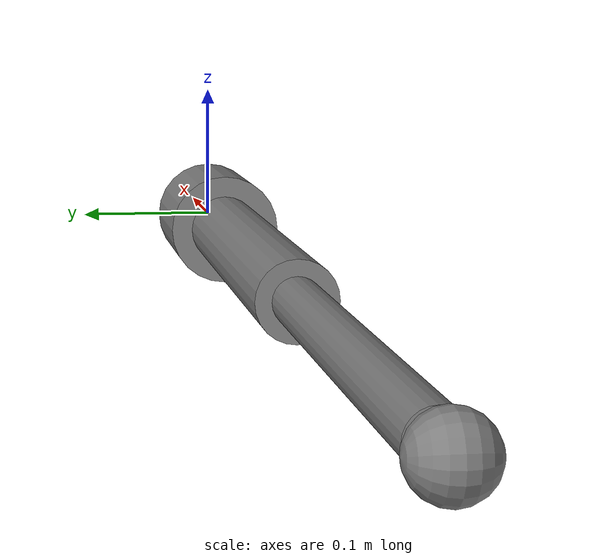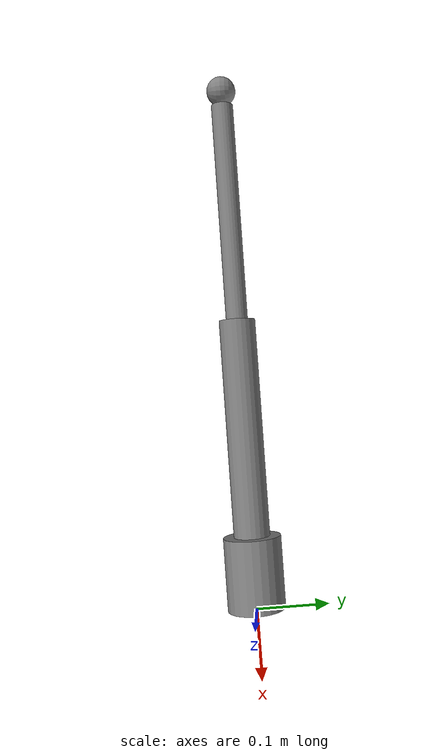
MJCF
<mujoco>
    <extension>

    </extension>

    <worldbody>
        <light pos="0 0 1.5" dir="0 0 -1" directional="true"/>

        <body name="dummy_link_1">
            <inertial mass="100" diaginertia="10 10 10" pos="0 0 0"/>
            <joint name="slider1" pos="0 0 0" axis="1 0 0" type="slide" range="-0.5 0.5"/>
            <body name="dummy_link_2">
                <inertial mass="100" diaginertia="10 10 10" pos="0 0 0"/>
                <joint name="slider2" pos="0 0 0" axis="0 1 0" type="slide" range="-0.5 0.5"/>
                <body name="dummy_link_3">
                    <inertial mass="100" diaginertia="10 10 10" pos="0 0 0"/>
                    <joint name="slider3" pos="0 0 0" axis="0 0 1" type="slide" range="-0.5 0.5"/>
                    <body name="LF-HAA">
                        <inertial mass="1.27737" diaginertia="1 1 1" pos="0 0 0"/>
                        <geom size="0.04 0.05" pos="-0.05 0 0" euler="0 90 0" type="cylinder"/>
                        <joint name="grace_LF-HAA" pos="0 0 0" axis="0 0 1" range="-90 90"/>
                        <body name="LF-HFE" pos="-0.1 0 0" euler="90 0 90">
                            <inertial mass="0.400571" diaginertia="1 1 1" pos="0 0 0"/>
                            <geom size="0.025 0.15" pos="0 0.15 0" euler="90 0 0" type="cylinder"/>
                            <joint name="LF-HAA_LF-HFE" pos="0 0 0" axis="0 0 1" range="-180 180"/>
                            <body name="LF-KFE" pos="0 0.30 0">
                                <inertial mass="0.768043" diaginertia="1 1 1" pos="0 0 0"/>
                                <geom size="0.015 0.15" pos="0 0.15 0" quat="0.707107 0.707107 0 0" type="cylinder"/>
                                <joint name="LF-HFE_LF-KFE" pos="0 0 0" axis="0 0 1" range="-180 180"/>
                                <body name="LF-FOOT" pos="0 0.32 0">
                                    <inertial mass="0.1" diaginertia="1 1 1" pos="0 0 0"/>
                                    <geom type="sphere" size="0.02 0" pos="0 0 0" euler="0 0 0" priority="1"
                                          solimp="1 1 0.02" condim="6" friction="5 0.02 0.01"/>
                                </body>
                            </body>
                        </body>
                    </body>
                </body>
            </body>
        </body>
    </worldbody>

    <actuator>

        <position name="act_slider1" joint="slider1" kp="50000" dampratio="1"/>
        <position name="act_slider2" joint="slider2" kp="50000" dampratio="1"/>
        <position name="act_slider3" joint="slider3" kp="50000" dampratio="1"/>

        <position name="pos_grace_LF-HAA" joint="grace_LF-HAA"  kp="1000" dampratio="0.5"/>
        <position name="pos_LF-HAA_LF-HFE" joint="LF-HAA_LF-HFE" kp="1000" dampratio="0.5"/>
        <position name="pos_LF-HFE_LF-KFE" joint="LF-HFE_LF-KFE" kp="1000" dampratio="0.5"/>

        <velocity name="vel_grace_LF-HAA" joint="grace_LF-HAA"  kv="100" />
        <velocity name="vel_LF-HAA_LF-HFE" joint="LF-HAA_LF-HFE" kv="100" />
        <velocity name="vel_LF-HFE_LF-KFE" joint="LF-HFE_LF-KFE" kv="100" />
    </actuator>
</mujoco>
